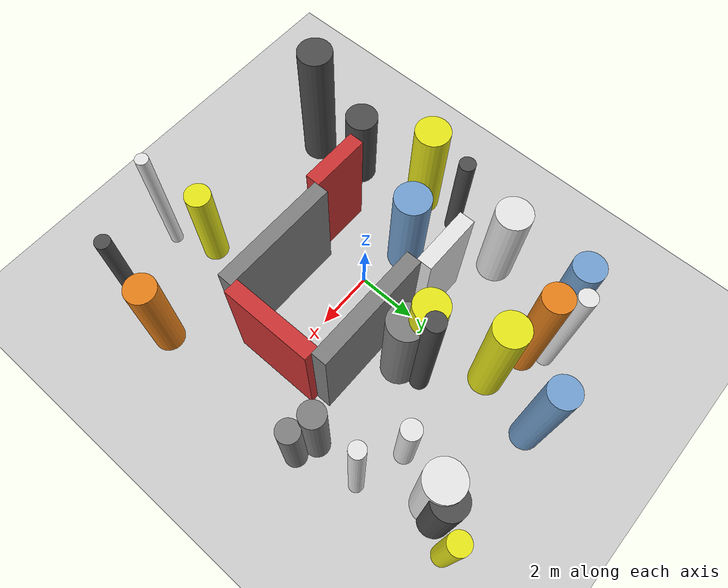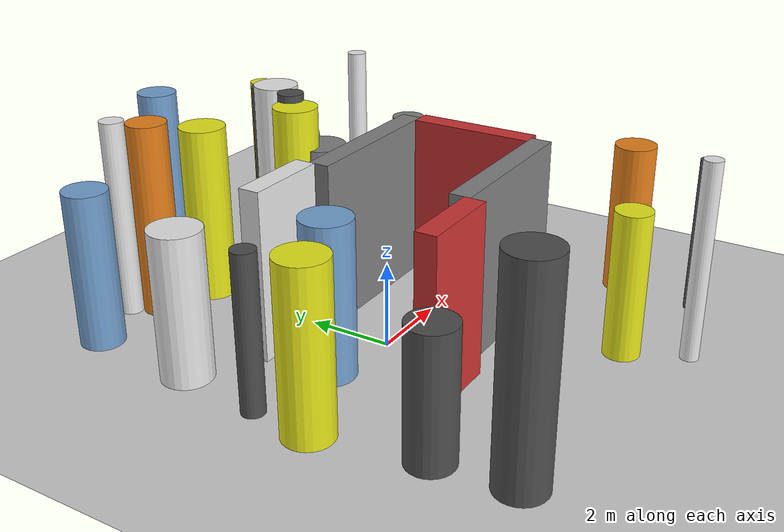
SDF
<?xml version='1.0'?>
<sdf version='1.6'>
  <world name='routeA_rl_v1__dense_recovery__rl_val__cul_de_sac_trap__000104'>
    <!-- Sun light -->
    <light name='sun' type='directional'>
      <cast_shadows>1</cast_shadows>
      <pose>0 0 10 0 0 0</pose>
      <diffuse>0.8 0.8 0.8 1</diffuse>
      <specular>0.2 0.2 0.2 1</specular>
      <attenuation>
        <range>1000</range>
        <constant>0.9</constant>
        <linear>0.01</linear>
        <quadratic>0.001</quadratic>
      </attenuation>
      <direction>-0.5 0.1 -0.9</direction>
    </light>

    <!-- Ground plane -->
    <model name='ground_plane'>
      <static>1</static>
      <link name='link'>
        <collision name='collision'>
          <geometry>
            <plane>
              <normal>0 0 1</normal>
              <size>100 100</size>
            </plane>
          </geometry>
          <surface>
            <contact>
              <collide_bitmask>65535</collide_bitmask>
              <ode/>
            </contact>
            <friction>
              <ode>
                <mu>100</mu>
                <mu2>50</mu2>
              </ode>
              <torsional><ode/></torsional>
            </friction>
            <bounce/>
          </surface>
          <max_contacts>10</max_contacts>
        </collision>
        <visual name='visual'>
          <cast_shadows>0</cast_shadows>
          <geometry>
            <plane>
              <normal>0 0 1</normal>
              <size>100 100</size>
            </plane>
          </geometry>
          <material>
            <script>
              <uri>file://media/materials/scripts/gazebo.material</uri>
              <n>Gazebo/Grey</n>
            </script>
          </material>
        </visual>
      </link>
    </model>

    <!-- Environment -->
    <magnetic_field>6e-06 2.3e-05 -4.2e-05</magnetic_field>
    <atmosphere type='adiabatic'/>
    <physics name='default_physics' default='0' type='ode'>
      <gravity>0 0 -9.8</gravity>
      <max_step_size>0.004</max_step_size>
      <real_time_factor>1</real_time_factor>
      <real_time_update_rate>250</real_time_update_rate>
    </physics>
    <scene>
      <ambient>0.4 0.4 0.4 1</ambient>
      <background>0.7 0.7 0.7 1</background>
      <shadows>1</shadows>
    </scene>
    <wind/>
    <spherical_coordinates>
      <surface_model>EARTH_WGS84</surface_model>
      <latitude_deg>0</latitude_deg>
      <longitude_deg>0</longitude_deg>
      <elevation>0</elevation>
      <heading_deg>0</heading_deg>
    </spherical_coordinates>

    <!-- ============ OBSTACLES (30) ============ -->
    <model name='trap_side_l'>
      <static>1</static>
      <link name='link'>
        <visual name='visual'>
          <geometry>
            <box>
              <size>4.0000 0.5000 4.0000</size>
            </box>
          </geometry>
          <material>
            <script>
              <n>Gazebo/Grey</n>
              <uri>file://media/materials/scripts/gazebo.material</uri>
            </script>
            <ambient>0.5 0.5 0.5 1</ambient>
          </material>
        </visual>
        <collision name='collision'>
          <geometry>
            <box>
              <size>4.0000 0.5000 4.0000</size>
            </box>
          </geometry>
          <max_contacts>10</max_contacts>
          <surface>
            <contact><ode/></contact>
            <bounce/>
            <friction>
              <ode><mu>1</mu><mu2>1</mu2></ode>
              <torsional><ode/></torsional>
            </friction>
          </surface>
        </collision>
      </link>
      <pose>2.0000 -1.7500 2.0000 0 0 0.0000</pose>
    </model>

    <model name='trap_side_r'>
      <static>1</static>
      <link name='link'>
        <visual name='visual'>
          <geometry>
            <box>
              <size>4.0000 0.5000 4.0000</size>
            </box>
          </geometry>
          <material>
            <script>
              <n>Gazebo/Grey</n>
              <uri>file://media/materials/scripts/gazebo.material</uri>
            </script>
            <ambient>0.5 0.5 0.5 1</ambient>
          </material>
        </visual>
        <collision name='collision'>
          <geometry>
            <box>
              <size>4.0000 0.5000 4.0000</size>
            </box>
          </geometry>
          <max_contacts>10</max_contacts>
          <surface>
            <contact><ode/></contact>
            <bounce/>
            <friction>
              <ode><mu>1</mu><mu2>1</mu2></ode>
              <torsional><ode/></torsional>
            </friction>
          </surface>
        </collision>
      </link>
      <pose>2.0000 1.7500 2.0000 0 0 0.0000</pose>
    </model>

    <model name='trap_back'>
      <static>1</static>
      <link name='link'>
        <visual name='visual'>
          <geometry>
            <box>
              <size>0.5000 3.0000 4.0000</size>
            </box>
          </geometry>
          <material>
            <script>
              <n>Gazebo/Red</n>
              <uri>file://media/materials/scripts/gazebo.material</uri>
            </script>
            <ambient>0.8 0.2 0.2 1</ambient>
          </material>
        </visual>
        <collision name='collision'>
          <geometry>
            <box>
              <size>0.5000 3.0000 4.0000</size>
            </box>
          </geometry>
          <max_contacts>10</max_contacts>
          <surface>
            <contact><ode/></contact>
            <bounce/>
            <friction>
              <ode><mu>1</mu><mu2>1</mu2></ode>
              <torsional><ode/></torsional>
            </friction>
          </surface>
        </collision>
      </link>
      <pose>4.0000 0.0000 2.0000 0 0 0.0000</pose>
    </model>

    <model name='trap_funnel_l'>
      <static>1</static>
      <link name='link'>
        <visual name='visual'>
          <geometry>
            <box>
              <size>2.0000 0.5000 4.0000</size>
            </box>
          </geometry>
          <material>
            <script>
              <n>Gazebo/Red</n>
              <uri>file://media/materials/scripts/gazebo.material</uri>
            </script>
            <ambient>0.8 0.2 0.2 1</ambient>
          </material>
        </visual>
        <collision name='collision'>
          <geometry>
            <box>
              <size>2.0000 0.5000 4.0000</size>
            </box>
          </geometry>
          <max_contacts>10</max_contacts>
          <surface>
            <contact><ode/></contact>
            <bounce/>
            <friction>
              <ode><mu>1</mu><mu2>1</mu2></ode>
              <torsional><ode/></torsional>
            </friction>
          </surface>
        </collision>
      </link>
      <pose>-1.0000 -2.1000 2.0000 0 0 0.0000</pose>
    </model>

    <model name='trap_funnel_r'>
      <static>1</static>
      <link name='link'>
        <visual name='visual'>
          <geometry>
            <box>
              <size>2.0000 0.5000 4.0000</size>
            </box>
          </geometry>
          <material>
            <script>
              <n>Gazebo/White</n>
              <uri>file://media/materials/scripts/gazebo.material</uri>
            </script>
            <ambient>0.9 0.9 0.9 1</ambient>
          </material>
        </visual>
        <collision name='collision'>
          <geometry>
            <box>
              <size>2.0000 0.5000 4.0000</size>
            </box>
          </geometry>
          <max_contacts>10</max_contacts>
          <surface>
            <contact><ode/></contact>
            <bounce/>
            <friction>
              <ode><mu>1</mu><mu2>1</mu2></ode>
              <torsional><ode/></torsional>
            </friction>
          </surface>
        </collision>
      </link>
      <pose>-1.0000 2.1000 2.0000 0 0 0.0000</pose>
    </model>

    <model name='trap_scatter_0'>
      <static>1</static>
      <link name='link'>
        <visual name='visual'>
          <geometry>
            <cylinder>
              <radius>0.3274</radius>
              <length>3.7544</length>
            </cylinder>
          </geometry>
          <material>
            <script>
              <n>Gazebo/Yellow</n>
              <uri>file://media/materials/scripts/gazebo.material</uri>
            </script>
            <ambient>0.9 0.9 0.1 1</ambient>
          </material>
        </visual>
        <collision name='collision'>
          <geometry>
            <cylinder>
              <radius>0.3274</radius>
              <length>3.7544</length>
            </cylinder>
          </geometry>
          <max_contacts>10</max_contacts>
          <surface>
            <contact><ode/></contact>
            <bounce/>
            <friction>
              <ode><mu>1</mu><mu2>1</mu2></ode>
              <torsional><ode/></torsional>
            </friction>
          </surface>
        </collision>
      </link>
      <pose>5.1608 7.3323 1.8772 0 0 0.0000</pose>
    </model>

    <model name='trap_scatter_1'>
      <static>1</static>
      <link name='link'>
        <visual name='visual'>
          <geometry>
            <cylinder>
              <radius>0.4217</radius>
              <length>3.4391</length>
            </cylinder>
          </geometry>
          <material>
            <script>
              <n>Gazebo/Yellow</n>
              <uri>file://media/materials/scripts/gazebo.material</uri>
            </script>
            <ambient>0.9 0.9 0.1 1</ambient>
          </material>
        </visual>
        <collision name='collision'>
          <geometry>
            <cylinder>
              <radius>0.4217</radius>
              <length>3.4391</length>
            </cylinder>
          </geometry>
          <max_contacts>10</max_contacts>
          <surface>
            <contact><ode/></contact>
            <bounce/>
            <friction>
              <ode><mu>1</mu><mu2>1</mu2></ode>
              <torsional><ode/></torsional>
            </friction>
          </surface>
        </collision>
      </link>
      <pose>2.4099 -4.6246 1.7196 0 0 0.0000</pose>
    </model>

    <model name='trap_scatter_2'>
      <static>1</static>
      <link name='link'>
        <visual name='visual'>
          <geometry>
            <cylinder>
              <radius>0.5939</radius>
              <length>3.8037</length>
            </cylinder>
          </geometry>
          <material>
            <script>
              <n>Gazebo/Grey</n>
              <uri>file://media/materials/scripts/gazebo.material</uri>
            </script>
            <ambient>0.5 0.5 0.5 1</ambient>
          </material>
        </visual>
        <collision name='collision'>
          <geometry>
            <cylinder>
              <radius>0.5939</radius>
              <length>3.8037</length>
            </cylinder>
          </geometry>
          <max_contacts>10</max_contacts>
          <surface>
            <contact><ode/></contact>
            <bounce/>
            <friction>
              <ode><mu>1</mu><mu2>1</mu2></ode>
              <torsional><ode/></torsional>
            </friction>
          </surface>
        </collision>
      </link>
      <pose>1.5839 2.7946 1.9019 0 0 0.0000</pose>
    </model>

    <model name='trap_scatter_3'>
      <static>1</static>
      <link name='link'>
        <visual name='visual'>
          <geometry>
            <cylinder>
              <radius>0.2695</radius>
              <length>3.6415</length>
            </cylinder>
          </geometry>
          <material>
            <script>
              <n>Gazebo/DarkGrey</n>
              <uri>file://media/materials/scripts/gazebo.material</uri>
            </script>
            <ambient>0.3 0.3 0.3 1</ambient>
          </material>
        </visual>
        <collision name='collision'>
          <geometry>
            <cylinder>
              <radius>0.2695</radius>
              <length>3.6415</length>
            </cylinder>
          </geometry>
          <max_contacts>10</max_contacts>
          <surface>
            <contact><ode/></contact>
            <bounce/>
            <friction>
              <ode><mu>1</mu><mu2>1</mu2></ode>
              <torsional><ode/></torsional>
            </friction>
          </surface>
        </collision>
      </link>
      <pose>-3.6898 0.8988 1.8208 0 0 0.0000</pose>
    </model>

    <model name='trap_scatter_4'>
      <static>1</static>
      <link name='link'>
        <visual name='visual'>
          <geometry>
            <cylinder>
              <radius>0.4690</radius>
              <length>4.6679</length>
            </cylinder>
          </geometry>
          <material>
            <script>
              <n>Gazebo/Orange</n>
              <uri>file://media/materials/scripts/gazebo.material</uri>
            </script>
            <ambient>0.9 0.5 0.1 1</ambient>
          </material>
        </visual>
        <collision name='collision'>
          <geometry>
            <cylinder>
              <radius>0.4690</radius>
              <length>4.6679</length>
            </cylinder>
          </geometry>
          <max_contacts>10</max_contacts>
          <surface>
            <contact><ode/></contact>
            <bounce/>
            <friction>
              <ode><mu>1</mu><mu2>1</mu2></ode>
              <torsional><ode/></torsional>
            </friction>
          </surface>
        </collision>
      </link>
      <pose>-1.2422 5.5533 2.3340 0 0 0.0000</pose>
    </model>

    <model name='trap_scatter_5'>
      <static>1</static>
      <link name='link'>
        <visual name='visual'>
          <geometry>
            <cylinder>
              <radius>0.5952</radius>
              <length>3.6612</length>
            </cylinder>
          </geometry>
          <material>
            <script>
              <n>Gazebo/Blue</n>
              <uri>file://media/materials/scripts/gazebo.material</uri>
            </script>
            <ambient>0.447 0.624 0.812 1</ambient>
          </material>
        </visual>
        <collision name='collision'>
          <geometry>
            <cylinder>
              <radius>0.5952</radius>
              <length>3.6612</length>
            </cylinder>
          </geometry>
          <max_contacts>10</max_contacts>
          <surface>
            <contact><ode/></contact>
            <bounce/>
            <friction>
              <ode><mu>1</mu><mu2>1</mu2></ode>
              <torsional><ode/></torsional>
            </friction>
          </surface>
        </collision>
      </link>
      <pose>-1.6455 0.4173 1.8306 0 0 0.0000</pose>
    </model>

    <model name='trap_scatter_6'>
      <static>1</static>
      <link name='link'>
        <visual name='visual'>
          <geometry>
            <cylinder>
              <radius>0.5388</radius>
              <length>3.0193</length>
            </cylinder>
          </geometry>
          <material>
            <script>
              <n>Gazebo/DarkGrey</n>
              <uri>file://media/materials/scripts/gazebo.material</uri>
            </script>
            <ambient>0.3 0.3 0.3 1</ambient>
          </material>
        </visual>
        <collision name='collision'>
          <geometry>
            <cylinder>
              <radius>0.5388</radius>
              <length>3.0193</length>
            </cylinder>
          </geometry>
          <max_contacts>10</max_contacts>
          <surface>
            <contact><ode/></contact>
            <bounce/>
            <friction>
              <ode><mu>1</mu><mu2>1</mu2></ode>
              <torsional><ode/></torsional>
            </friction>
          </surface>
        </collision>
      </link>
      <pose>-3.2976 -2.9989 1.5097 0 0 0.0000</pose>
    </model>

    <model name='trap_scatter_7'>
      <static>1</static>
      <link name='link'>
        <visual name='visual'>
          <geometry>
            <cylinder>
              <radius>0.5914</radius>
              <length>4.0693</length>
            </cylinder>
          </geometry>
          <material>
            <script>
              <n>Gazebo/White</n>
              <uri>file://media/materials/scripts/gazebo.material</uri>
            </script>
            <ambient>0.9 0.9 0.9 1</ambient>
          </material>
        </visual>
        <collision name='collision'>
          <geometry>
            <cylinder>
              <radius>0.5914</radius>
              <length>4.0693</length>
            </cylinder>
          </geometry>
          <max_contacts>10</max_contacts>
          <surface>
            <contact><ode/></contact>
            <bounce/>
            <friction>
              <ode><mu>1</mu><mu2>1</mu2></ode>
              <torsional><ode/></torsional>
            </friction>
          </surface>
        </collision>
      </link>
      <pose>4.2863 6.1683 2.0347 0 0 0.0000</pose>
    </model>

    <model name='trap_scatter_8'>
      <static>1</static>
      <link name='link'>
        <visual name='visual'>
          <geometry>
            <cylinder>
              <radius>0.5098</radius>
              <length>3.6754</length>
            </cylinder>
          </geometry>
          <material>
            <script>
              <n>Gazebo/Blue</n>
              <uri>file://media/materials/scripts/gazebo.material</uri>
            </script>
            <ambient>0.447 0.624 0.812 1</ambient>
          </material>
        </visual>
        <collision name='collision'>
          <geometry>
            <cylinder>
              <radius>0.5098</radius>
              <length>3.6754</length>
            </cylinder>
          </geometry>
          <max_contacts>10</max_contacts>
          <surface>
            <contact><ode/></contact>
            <bounce/>
            <friction>
              <ode><mu>1</mu><mu2>1</mu2></ode>
              <torsional><ode/></torsional>
            </friction>
          </surface>
        </collision>
      </link>
      <pose>-3.1561 5.6324 1.8377 0 0 0.0000</pose>
    </model>

    <model name='trap_scatter_9'>
      <static>1</static>
      <link name='link'>
        <visual name='visual'>
          <geometry>
            <cylinder>
              <radius>0.2797</radius>
              <length>4.7341</length>
            </cylinder>
          </geometry>
          <material>
            <script>
              <n>Gazebo/White</n>
              <uri>file://media/materials/scripts/gazebo.material</uri>
            </script>
            <ambient>0.9 0.9 0.9 1</ambient>
          </material>
        </visual>
        <collision name='collision'>
          <geometry>
            <cylinder>
              <radius>0.2797</radius>
              <length>4.7341</length>
            </cylinder>
          </geometry>
          <max_contacts>10</max_contacts>
          <surface>
            <contact><ode/></contact>
            <bounce/>
            <friction>
              <ode><mu>1</mu><mu2>1</mu2></ode>
              <torsional><ode/></torsional>
            </friction>
          </surface>
        </collision>
      </link>
      <pose>-1.7186 6.1339 2.3671 0 0 0.0000</pose>
    </model>

    <model name='trap_scatter_10'>
      <static>1</static>
      <link name='link'>
        <visual name='visual'>
          <geometry>
            <cylinder>
              <radius>0.5726</radius>
              <length>4.8416</length>
            </cylinder>
          </geometry>
          <material>
            <script>
              <n>Gazebo/DarkGrey</n>
              <uri>file://media/materials/scripts/gazebo.material</uri>
            </script>
            <ambient>0.3 0.3 0.3 1</ambient>
          </material>
        </visual>
        <collision name='collision'>
          <geometry>
            <cylinder>
              <radius>0.5726</radius>
              <length>4.8416</length>
            </cylinder>
          </geometry>
          <max_contacts>10</max_contacts>
          <surface>
            <contact><ode/></contact>
            <bounce/>
            <friction>
              <ode><mu>1</mu><mu2>1</mu2></ode>
              <torsional><ode/></torsional>
            </friction>
          </surface>
        </collision>
      </link>
      <pose>-3.1202 -4.7892 2.4208 0 0 0.0000</pose>
    </model>

    <model name='trap_scatter_11'>
      <static>1</static>
      <link name='link'>
        <visual name='visual'>
          <geometry>
            <cylinder>
              <radius>0.2503</radius>
              <length>3.7599</length>
            </cylinder>
          </geometry>
          <material>
            <script>
              <n>Gazebo/DarkGrey</n>
              <uri>file://media/materials/scripts/gazebo.material</uri>
            </script>
            <ambient>0.3 0.3 0.3 1</ambient>
          </material>
        </visual>
        <collision name='collision'>
          <geometry>
            <cylinder>
              <radius>0.2503</radius>
              <length>3.7599</length>
            </cylinder>
          </geometry>
          <max_contacts>10</max_contacts>
          <surface>
            <contact><ode/></contact>
            <bounce/>
            <friction>
              <ode><mu>1</mu><mu2>1</mu2></ode>
              <torsional><ode/></torsional>
            </friction>
          </surface>
        </collision>
      </link>
      <pose>5.3761 -5.3582 1.8800 0 0 0.0000</pose>
    </model>

    <model name='trap_scatter_12'>
      <static>1</static>
      <link name='link'>
        <visual name='visual'>
          <geometry>
            <cylinder>
              <radius>0.4716</radius>
              <length>4.6130</length>
            </cylinder>
          </geometry>
          <material>
            <script>
              <n>Gazebo/Blue</n>
              <uri>file://media/materials/scripts/gazebo.material</uri>
            </script>
            <ambient>0.447 0.624 0.812 1</ambient>
          </material>
        </visual>
        <collision name='collision'>
          <geometry>
            <cylinder>
              <radius>0.4716</radius>
              <length>4.6130</length>
            </cylinder>
          </geometry>
          <max_contacts>10</max_contacts>
          <surface>
            <contact><ode/></contact>
            <bounce/>
            <friction>
              <ode><mu>1</mu><mu2>1</mu2></ode>
              <torsional><ode/></torsional>
            </friction>
          </surface>
        </collision>
      </link>
      <pose>0.7595 7.1038 2.3065 0 0 0.0000</pose>
    </model>

    <model name='trap_scatter_13'>
      <static>1</static>
      <link name='link'>
        <visual name='visual'>
          <geometry>
            <cylinder>
              <radius>0.3096</radius>
              <length>4.9453</length>
            </cylinder>
          </geometry>
          <material>
            <script>
              <n>Gazebo/DarkGrey</n>
              <uri>file://media/materials/scripts/gazebo.material</uri>
            </script>
            <ambient>0.3 0.3 0.3 1</ambient>
          </material>
        </visual>
        <collision name='collision'>
          <geometry>
            <cylinder>
              <radius>0.3096</radius>
              <length>4.9453</length>
            </cylinder>
          </geometry>
          <max_contacts>10</max_contacts>
          <surface>
            <contact><ode/></contact>
            <bounce/>
            <friction>
              <ode><mu>1</mu><mu2>1</mu2></ode>
              <torsional><ode/></torsional>
            </friction>
          </surface>
        </collision>
      </link>
      <pose>1.5163 3.5778 2.4726 0 0 0.0000</pose>
    </model>

    <model name='trap_scatter_14'>
      <static>1</static>
      <link name='link'>
        <visual name='visual'>
          <geometry>
            <cylinder>
              <radius>0.5291</radius>
              <length>4.7713</length>
            </cylinder>
          </geometry>
          <material>
            <script>
              <n>Gazebo/Yellow</n>
              <uri>file://media/materials/scripts/gazebo.material</uri>
            </script>
            <ambient>0.9 0.9 0.1 1</ambient>
          </material>
        </visual>
        <collision name='collision'>
          <geometry>
            <cylinder>
              <radius>0.5291</radius>
              <length>4.7713</length>
            </cylinder>
          </geometry>
          <max_contacts>10</max_contacts>
          <surface>
            <contact><ode/></contact>
            <bounce/>
            <friction>
              <ode><mu>1</mu><mu2>1</mu2></ode>
              <torsional><ode/></torsional>
            </friction>
          </surface>
        </collision>
      </link>
      <pose>1.1602 3.1924 2.3857 0 0 0.0000</pose>
    </model>

    <model name='trap_scatter_15'>
      <static>1</static>
      <link name='link'>
        <visual name='visual'>
          <geometry>
            <cylinder>
              <radius>0.4993</radius>
              <length>3.7015</length>
            </cylinder>
          </geometry>
          <material>
            <script>
              <n>Gazebo/Orange</n>
              <uri>file://media/materials/scripts/gazebo.material</uri>
            </script>
            <ambient>0.9 0.5 0.1 1</ambient>
          </material>
        </visual>
        <collision name='collision'>
          <geometry>
            <cylinder>
              <radius>0.4993</radius>
              <length>3.7015</length>
            </cylinder>
          </geometry>
          <max_contacts>10</max_contacts>
          <surface>
            <contact><ode/></contact>
            <bounce/>
            <friction>
              <ode><mu>1</mu><mu2>1</mu2></ode>
              <torsional><ode/></torsional>
            </friction>
          </surface>
        </collision>
      </link>
      <pose>5.6628 -3.4686 1.8507 0 0 0.0000</pose>
    </model>

    <model name='trap_scatter_16'>
      <static>1</static>
      <link name='link'>
        <visual name='visual'>
          <geometry>
            <cylinder>
              <radius>0.3149</radius>
              <length>3.1399</length>
            </cylinder>
          </geometry>
          <material>
            <script>
              <n>Gazebo/White</n>
              <uri>file://media/materials/scripts/gazebo.material</uri>
            </script>
            <ambient>0.9 0.9 0.9 1</ambient>
          </material>
        </visual>
        <collision name='collision'>
          <geometry>
            <cylinder>
              <radius>0.3149</radius>
              <length>3.1399</length>
            </cylinder>
          </geometry>
          <max_contacts>10</max_contacts>
          <surface>
            <contact><ode/></contact>
            <bounce/>
            <friction>
              <ode><mu>1</mu><mu2>1</mu2></ode>
              <torsional><ode/></torsional>
            </friction>
          </surface>
        </collision>
      </link>
      <pose>3.6371 4.6859 1.5700 0 0 0.0000</pose>
    </model>

    <model name='trap_scatter_17'>
      <static>1</static>
      <link name='link'>
        <visual name='visual'>
          <geometry>
            <cylinder>
              <radius>0.5172</radius>
              <length>3.8894</length>
            </cylinder>
          </geometry>
          <material>
            <script>
              <n>Gazebo/DarkGrey</n>
              <uri>file://media/materials/scripts/gazebo.material</uri>
            </script>
            <ambient>0.3 0.3 0.3 1</ambient>
          </material>
        </visual>
        <collision name='collision'>
          <geometry>
            <cylinder>
              <radius>0.5172</radius>
              <length>3.8894</length>
            </cylinder>
          </geometry>
          <max_contacts>10</max_contacts>
          <surface>
            <contact><ode/></contact>
            <bounce/>
            <friction>
              <ode><mu>1</mu><mu2>1</mu2></ode>
              <torsional><ode/></torsional>
            </friction>
          </surface>
        </collision>
      </link>
      <pose>4.5577 6.5659 1.9447 0 0 0.0000</pose>
    </model>

    <model name='trap_scatter_18'>
      <static>1</static>
      <link name='link'>
        <visual name='visual'>
          <geometry>
            <cylinder>
              <radius>0.5908</radius>
              <length>3.4638</length>
            </cylinder>
          </geometry>
          <material>
            <script>
              <n>Gazebo/White</n>
              <uri>file://media/materials/scripts/gazebo.material</uri>
            </script>
            <ambient>0.9 0.9 0.9 1</ambient>
          </material>
        </visual>
        <collision name='collision'>
          <geometry>
            <cylinder>
              <radius>0.5908</radius>
              <length>3.4638</length>
            </cylinder>
          </geometry>
          <max_contacts>10</max_contacts>
          <surface>
            <contact><ode/></contact>
            <bounce/>
            <friction>
              <ode><mu>1</mu><mu2>1</mu2></ode>
              <torsional><ode/></torsional>
            </friction>
          </surface>
        </collision>
      </link>
      <pose>-3.3258 2.9584 1.7319 0 0 0.0000</pose>
    </model>

    <model name='trap_scatter_19'>
      <static>1</static>
      <link name='link'>
        <visual name='visual'>
          <geometry>
            <cylinder>
              <radius>0.2372</radius>
              <length>4.9862</length>
            </cylinder>
          </geometry>
          <material>
            <script>
              <n>Gazebo/White</n>
              <uri>file://media/materials/scripts/gazebo.material</uri>
            </script>
            <ambient>0.9 0.9 0.9 1</ambient>
          </material>
        </visual>
        <collision name='collision'>
          <geometry>
            <cylinder>
              <radius>0.2372</radius>
              <length>4.9862</length>
            </cylinder>
          </geometry>
          <max_contacts>10</max_contacts>
          <surface>
            <contact><ode/></contact>
            <bounce/>
            <friction>
              <ode><mu>1</mu><mu2>1</mu2></ode>
              <torsional><ode/></torsional>
            </friction>
          </surface>
        </collision>
      </link>
      <pose>5.2770 4.1924 2.4931 0 0 0.0000</pose>
    </model>

    <model name='trap_scatter_20'>
      <static>1</static>
      <link name='link'>
        <visual name='visual'>
          <geometry>
            <cylinder>
              <radius>0.5523</radius>
              <length>4.2730</length>
            </cylinder>
          </geometry>
          <material>
            <script>
              <n>Gazebo/Yellow</n>
              <uri>file://media/materials/scripts/gazebo.material</uri>
            </script>
            <ambient>0.9 0.9 0.1 1</ambient>
          </material>
        </visual>
        <collision name='collision'>
          <geometry>
            <cylinder>
              <radius>0.5523</radius>
              <length>4.2730</length>
            </cylinder>
          </geometry>
          <max_contacts>10</max_contacts>
          <surface>
            <contact><ode/></contact>
            <bounce/>
            <friction>
              <ode><mu>1</mu><mu2>1</mu2></ode>
              <torsional><ode/></torsional>
            </friction>
          </surface>
        </collision>
      </link>
      <pose>0.0979 5.1217 2.1365 0 0 0.0000</pose>
    </model>

    <model name='trap_scatter_21'>
      <static>1</static>
      <link name='link'>
        <visual name='visual'>
          <geometry>
            <cylinder>
              <radius>0.4046</radius>
              <length>3.5523</length>
            </cylinder>
          </geometry>
          <material>
            <script>
              <n>Gazebo/Grey</n>
              <uri>file://media/materials/scripts/gazebo.material</uri>
            </script>
            <ambient>0.5 0.5 0.5 1</ambient>
          </material>
        </visual>
        <collision name='collision'>
          <geometry>
            <cylinder>
              <radius>0.4046</radius>
              <length>3.5523</length>
            </cylinder>
          </geometry>
          <max_contacts>10</max_contacts>
          <surface>
            <contact><ode/></contact>
            <bounce/>
            <friction>
              <ode><mu>1</mu><mu2>1</mu2></ode>
              <torsional><ode/></torsional>
            </friction>
          </surface>
        </collision>
      </link>
      <pose>5.1242 2.5163 1.7761 0 0 0.0000</pose>
    </model>

    <model name='trap_scatter_22'>
      <static>1</static>
      <link name='link'>
        <visual name='visual'>
          <geometry>
            <cylinder>
              <radius>0.3626</radius>
              <length>3.1734</length>
            </cylinder>
          </geometry>
          <material>
            <script>
              <n>Gazebo/Grey</n>
              <uri>file://media/materials/scripts/gazebo.material</uri>
            </script>
            <ambient>0.5 0.5 0.5 1</ambient>
          </material>
        </visual>
        <collision name='collision'>
          <geometry>
            <cylinder>
              <radius>0.3626</radius>
              <length>3.1734</length>
            </cylinder>
          </geometry>
          <max_contacts>10</max_contacts>
          <surface>
            <contact><ode/></contact>
            <bounce/>
            <friction>
              <ode><mu>1</mu><mu2>1</mu2></ode>
              <torsional><ode/></torsional>
            </friction>
          </surface>
        </collision>
      </link>
      <pose>5.8124 2.2561 1.5867 0 0 0.0000</pose>
    </model>

    <model name='trap_scatter_23'>
      <static>1</static>
      <link name='link'>
        <visual name='visual'>
          <geometry>
            <cylinder>
              <radius>0.5766</radius>
              <length>3.9173</length>
            </cylinder>
          </geometry>
          <material>
            <script>
              <n>Gazebo/Yellow</n>
              <uri>file://media/materials/scripts/gazebo.material</uri>
            </script>
            <ambient>0.9 0.9 0.1 1</ambient>
          </material>
        </visual>
        <collision name='collision'>
          <geometry>
            <cylinder>
              <radius>0.5766</radius>
              <length>3.9173</length>
            </cylinder>
          </geometry>
          <max_contacts>10</max_contacts>
          <surface>
            <contact><ode/></contact>
            <bounce/>
            <friction>
              <ode><mu>1</mu><mu2>1</mu2></ode>
              <torsional><ode/></torsional>
            </friction>
          </surface>
        </collision>
      </link>
      <pose>-3.7752 -0.5337 1.9586 0 0 0.0000</pose>
    </model>

    <model name='trap_scatter_24'>
      <static>1</static>
      <link name='link'>
        <visual name='visual'>
          <geometry>
            <cylinder>
              <radius>0.2114</radius>
              <length>4.6501</length>
            </cylinder>
          </geometry>
          <material>
            <script>
              <n>Gazebo/White</n>
              <uri>file://media/materials/scripts/gazebo.material</uri>
            </script>
            <ambient>0.9 0.9 0.9 1</ambient>
          </material>
        </visual>
        <collision name='collision'>
          <geometry>
            <cylinder>
              <radius>0.2114</radius>
              <length>4.6501</length>
            </cylinder>
          </geometry>
          <max_contacts>10</max_contacts>
          <surface>
            <contact><ode/></contact>
            <bounce/>
            <friction>
              <ode><mu>1</mu><mu2>1</mu2></ode>
              <torsional><ode/></torsional>
            </friction>
          </surface>
        </collision>
      </link>
      <pose>2.9924 -5.9862 2.3251 0 0 0.0000</pose>
    </model>

    <!-- GUI camera -->
    <gui fullscreen='0'>
      <camera name='user_camera'>
        <pose>-15 0 18 0 0.85 0.15</pose>
        <view_controller>orbit</view_controller>
        <projection_type>perspective</projection_type>
      </camera>
    </gui>
  </world>
</sdf>
